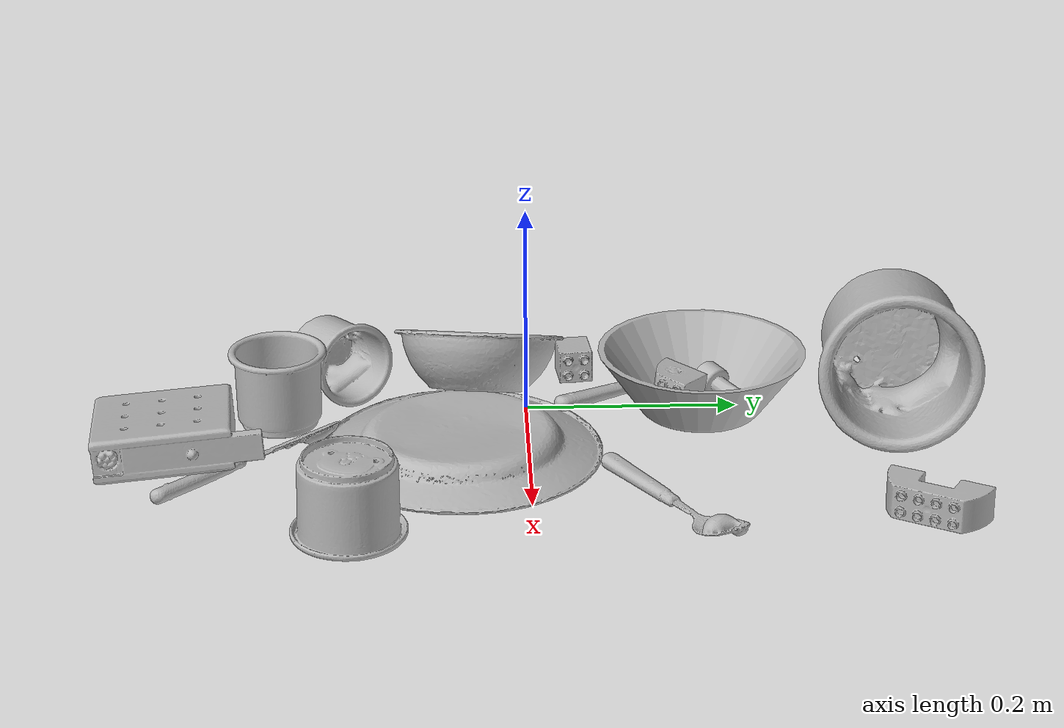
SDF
<sdf version="1.4">
  <world name="default">
    <light name="light1" type="point">
      <pose>0 0 1 0 0 0</pose>
      <diffuse>3 3 3 1</diffuse>
      <specular>3 3 3 1</specular>
    </light>
    <light name="light2" type="point">
      <pose>0 0.5 2 0 0 0</pose>
      <diffuse>1 1 1 1</diffuse>
      <specular>1 1 1 1</specular>
    </light>
    <light name="light3" type="point">
      <pose>0 0.5 2 0 0 0</pose>
      <diffuse>3 3 3 1</diffuse>
      <specular>3 3 3 1</specular>
    </light>
    <scene>
      <ambient>0.7 0.7 0.7</ambient>
    </scene>
    <model name="plate1">
      <link name="link_plate1">
        <collision name="default">
          <geometry>
            <mesh>
              <uri>model://plate/collision_meshes/collision.obj</uri>
              <scale>1.0 1.0 1.0</scale>
            </mesh>
          </geometry>
          <surface>
            <friction>
              <ode>
                <mu>0.5</mu>
                <mu2>0.5</mu2>
              </ode>
            </friction>
          <contact>
        <ode>
            <max_vel>0</max_vel>
            <min_depth>0.0001</min_depth>
            <kp>1e8</kp>
        </ode>
    </contact></surface>
        </collision>
        <visual name="default">
          <geometry>
            <mesh>
              <uri>model://plate/visual_meshes/visual.dae</uri>
              <scale>1.0 1.0 1.0</scale>
            </mesh>
          </geometry>
        </visual>
        <inertial>
          <mass>0.17760059237480164</mass>
          <pose>-0.0006044625188224018 0.0002782586379908025 -0.0010561981471255422 0.0022187804018266454 -0.0032254852757079067 0.45261158451631034</pose>
          <inertia>
            <ixx>0.0008308187</ixx>
            <iyy>0.0008228725</iyy>
            <izz>0.0016249575</izz>
            <ixy>0</ixy>
            <ixz>0</ixz>
            <iyz>0</iyz>
          </inertia>
        </inertial>
      </link>
      <pose>0.09410565346479416 -0.06196620315313339 0.013863763771951199 3.128066925542664 -0.006814763806014557 1.2859643634953353</pose>
    </model>
    <model name="cup1">
      <link name="link_cup1">
        <collision name="default">
          <geometry>
            <mesh>
              <uri>model://e_cups/collision_meshes/collision.obj</uri>
              <scale>2.0 2.0 2.0</scale>
            </mesh>
          </geometry>
          <surface>
            <friction>
              <ode>
                <mu>0.5</mu>
                <mu2>0.5</mu2>
              </ode>
            </friction>
          <contact>
        <ode>
            <max_vel>0</max_vel>
            <min_depth>0.0001</min_depth>
            <kp>1e8</kp>
        </ode>
    </contact></surface>
        </collision>
        <visual name="default">
          <geometry>
            <mesh>
              <uri>model://e_cups/visual_meshes/visual.dae</uri>
              <scale>2.0 2.0 2.0</scale>
            </mesh>
          </geometry>
        </visual>
        <inertial>
          <mass>0.744063675403595</mass>
          <pose>0.002271148143336177 0.005759569350630045 -0.007765938527882099 0.6952380949131286 0.08767384491187986 -0.5235246841726229</pose>
          <inertia>
            <ixx>0.0026243117</ixx>
            <iyy>0.0027427815</iyy>
            <izz>0.0025091455</izz>
            <ixy>0</ixy>
            <ixz>0</ixz>
            <iyz>0</iyz>
          </inertia>
        </inertial>
      </link>
      <pose>0.035534437745809555 0.3438682556152344 0.06935565918684006 -0.7841824411734971 1.4361086155654788 -0.8671366079619782</pose>
    </model>
    <model name="silverware1">
      <link name="link_silverware1">
        <collision name="default">
          <geometry>
            <mesh>
              <uri>model://knife/collision_meshes/collision.obj</uri>
              <scale>1.0 1.0 1.0</scale>
            </mesh>
          </geometry>
          <surface>
            <friction>
              <ode>
                <mu>0.5</mu>
                <mu2>0.5</mu2>
              </ode>
            </friction>
          <contact>
        <ode>
            <max_vel>0</max_vel>
            <min_depth>0.0001</min_depth>
            <kp>1e8</kp>
        </ode>
    </contact></surface>
        </collision>
        <visual name="default">
          <geometry>
            <mesh>
              <uri>model://knife/visual_meshes/visual.dae</uri>
              <scale>1.0 1.0 1.0</scale>
            </mesh>
          </geometry>
        </visual>
        <inertial>
          <mass>0.01882243901491165</mass>
          <pose>-0.02378525212407112 0.001527512213215232 5.062019408796914e-05 0.07305335090357784 0.017248422780830937 -0.007409828138098005</pose>
          <inertia>
            <ixx>5.342572e-07</ixx>
            <iyy>7.231275e-05</iyy>
            <izz>7.248483e-05</izz>
            <ixy>0</ixy>
            <ixz>0</ixz>
            <iyz>0</iyz>
          </inertia>
        </inertial>
      </link>
      <pose>0.12135054171085358 -0.253367155790329 0.010379749350249767 -0.4490532341487544 -0.025207900766433308 2.2886335687527946</pose>
    </model>
    <model name="silverware2">
      <link name="link_silverware2">
        <collision name="default">
          <geometry>
            <mesh>
              <uri>model://fork/collision_meshes/collision.obj</uri>
              <scale>1.0 1.0 1.0</scale>
            </mesh>
          </geometry>
          <surface>
            <friction>
              <ode>
                <mu>0.5</mu>
                <mu2>0.5</mu2>
              </ode>
            </friction>
          <contact>
        <ode>
            <max_vel>0</max_vel>
            <min_depth>0.0001</min_depth>
            <kp>1e8</kp>
        </ode>
    </contact></surface>
        </collision>
        <visual name="default">
          <geometry>
            <mesh>
              <uri>model://fork/visual_meshes/visual.dae</uri>
              <scale>1.0 1.0 1.0</scale>
            </mesh>
          </geometry>
        </visual>
        <inertial>
          <mass>0.02216319739818573</mass>
          <pose>-0.029570037499070168 0.0004658822435885668 0.0003218860365450382 -0.01355085274048469 -0.010977831838055618 0.014453900749429992</pose>
          <inertia>
            <ixx>7.769453e-07</ixx>
            <iyy>5.7861733e-05</iyy>
            <izz>5.8209254e-05</izz>
            <ixy>0</ixy>
            <ixz>0</ixz>
            <iyz>0</iyz>
          </inertia>
        </inertial>
      </link>
      <pose>-0.03530328720808029 0.10907353460788727 0.006555468775331974 0.028996470114359463 0.07186813787313696 2.1801122237385395</pose>
    </model>
    <model name="silverware3">
      <link name="link_silverware3">
        <collision name="default">
          <geometry>
            <mesh>
              <uri>model://spoon/collision_meshes/collision.obj</uri>
              <scale>1.0 1.0 1.0</scale>
            </mesh>
          </geometry>
          <surface>
            <friction>
              <ode>
                <mu>0.5</mu>
                <mu2>0.5</mu2>
              </ode>
            </friction>
          <contact>
        <ode>
            <max_vel>0</max_vel>
            <min_depth>0.0001</min_depth>
            <kp>1e8</kp>
        </ode>
    </contact></surface>
        </collision>
        <visual name="default">
          <geometry>
            <mesh>
              <uri>model://spoon/visual_meshes/visual.dae</uri>
              <scale>1.0 1.0 1.0</scale>
            </mesh>
          </geometry>
        </visual>
        <inertial>
          <mass>0.0369713120162487</mass>
          <pose>-0.005526314955204725 -0.001603417214937508 -0.0007271651993505657 0.03521850370393077 -0.03906584809093457 0.006150612862082015</pose>
          <inertia>
            <ixx>2.0564048e-06</ixx>
            <iyy>0.00014067463</iyy>
            <izz>0.00014168874</izz>
            <ixy>0</ixy>
            <ixz>0</ixz>
            <iyz>0</iyz>
          </inertia>
        </inertial>
      </link>
      <pose>0.2061149775981903 0.12503089010715485 0.008385260589420795 0.006731810437137665 0.026892992517310244 0.5886213264831909</pose>
    </model>
    <model name="cup3">
      <link name="link_cup3">
        <collision name="default">
          <geometry>
            <mesh>
              <uri>model://h_cups/collision_meshes/collision.obj</uri>
              <scale>1.0 1.0 1.0</scale>
            </mesh>
          </geometry>
          <surface>
            <friction>
              <ode>
                <mu>0.5</mu>
                <mu2>0.5</mu2>
              </ode>
            </friction>
          <contact>
        <ode>
            <max_vel>0</max_vel>
            <min_depth>0.0001</min_depth>
            <kp>1e8</kp>
        </ode>
    </contact></surface>
        </collision>
        <visual name="default">
          <geometry>
            <mesh>
              <uri>model://h_cups/visual_meshes/visual.dae</uri>
              <scale>1.0 1.0 1.0</scale>
            </mesh>
          </geometry>
        </visual>
        <inertial>
          <mass>0.07650958746671677</mass>
          <pose>-2.7029362172470428e-05 0.0002301867789356038 -0.0018405390437692404 -0.02436239906192228 0.06545228304852578 0.1288505673262376</pose>
          <inertia>
            <ixx>9.880857e-05</ixx>
            <iyy>9.7629454e-05</iyy>
            <izz>0.0001036231</izz>
            <ixy>0</ixy>
            <ixz>0</ixz>
            <iyz>0</iyz>
          </inertia>
        </inertial>
      </link>
      <pose>0.023814182728528976 -0.23189294338226318 0.037758003920316696 -3.556245952689518e-07 2.4910366808078988e-08 0.5169802868150288</pose>
    </model>
    <model name="cup4">
      <link name="link_cup4">
        <collision name="default">
          <geometry>
            <mesh>
              <uri>model://f_cups/collision_meshes/collision.obj</uri>
              <scale>1.0 1.0 1.0</scale>
            </mesh>
          </geometry>
          <surface>
            <friction>
              <ode>
                <mu>0.5</mu>
                <mu2>0.5</mu2>
              </ode>
            </friction>
          <contact>
        <ode>
            <max_vel>0</max_vel>
            <min_depth>0.0001</min_depth>
            <kp>1e8</kp>
        </ode>
    </contact></surface>
        </collision>
        <visual name="default">
          <geometry>
            <mesh>
              <uri>model://f_cups/visual_meshes/visual.dae</uri>
              <scale>1.0 1.0 1.0</scale>
            </mesh>
          </geometry>
        </visual>
        <inertial>
          <mass>0.06643713265657425</mass>
          <pose>-0.003171468386426568 -0.0006240070797502995 -0.003655537962913513 0.7862285241405351 -0.26079358215919657 -0.18237309734404591</pose>
          <inertia>
            <ixx>6.2452695e-05</ixx>
            <iyy>6.551358e-05</iyy>
            <izz>6.820148e-05</izz>
            <ixy>0</ixy>
            <ixz>0</ixz>
            <iyz>0</iyz>
          </inertia>
        </inertial>
      </link>
      <pose>-0.04281728342175484 -0.1790831983089447 0.037474967539310455 -1.371384362676932 -1.0650569271692993 -1.1773409871250868</pose>
    </model>
    <model name="cup5">
      <link name="link_cup5">
        <collision name="default">
          <geometry>
            <mesh>
              <uri>model://j_cups/collision_meshes/collision.obj</uri>
              <scale>1.0 1.0 1.0</scale>
            </mesh>
          </geometry>
          <surface>
            <friction>
              <ode>
                <mu>0.5</mu>
                <mu2>0.5</mu2>
              </ode>
            </friction>
          <contact>
        <ode>
            <max_vel>0</max_vel>
            <min_depth>0.0001</min_depth>
            <kp>1e8</kp>
        </ode>
    </contact></surface>
        </collision>
        <visual name="default">
          <geometry>
            <mesh>
              <uri>model://j_cups/visual_meshes/visual.dae</uri>
              <scale>1.0 1.0 1.0</scale>
            </mesh>
          </geometry>
        </visual>
        <inertial>
          <mass>0.12178023159503937</mass>
          <pose>0.0006164865335449576 0.000539897009730339 -0.001347901183180511 0.03030406613159603 0.03757978252187804 0.4386981755119238</pose>
          <inertia>
            <ixx>0.0001788119</ixx>
            <iyy>0.00018067128</iyy>
            <izz>0.00020613305</izz>
            <ixy>0</ixy>
            <ixz>0</ixz>
            <iyz>0</iyz>
          </inertia>
        </inertial>
      </link>
      <pose>0.24833640456199646 -0.15986113250255585 0.037997759878635406 -3.139845747499149 0.006369734900431056 0.9769605232478857</pose>
    </model>
    <model name="bowl1">
      <link name="link_bowl1">
        <collision name="default">
          <geometry>
            <mesh>
              <uri>model://bowl/collision_meshes/collision.obj</uri>
              <scale>1.0 1.0 1.0</scale>
            </mesh>
          </geometry>
          <surface>
            <friction>
              <ode>
                <mu>0.5</mu>
                <mu2>0.5</mu2>
              </ode>
            </friction>
          <contact>
        <ode>
            <max_vel>0</max_vel>
            <min_depth>0.0001</min_depth>
            <kp>1e8</kp>
        </ode>
    </contact></surface>
        </collision>
        <visual name="default">
          <geometry>
            <mesh>
              <uri>model://bowl/visual_meshes/visual.dae</uri>
              <scale>1.0 1.0 1.0</scale>
            </mesh>
          </geometry>
        </visual>
        <inertial>
          <mass>0.07745425403118134</mass>
          <pose>0.0002044533030129969 -0.001030205748975277 -0.0008042643312364817 -0.015764104528614948 0.014546761750555465 0.7140386532433999</pose>
          <inertia>
            <ixx>0.00017791858</ixx>
            <iyy>0.0001739432</iyy>
            <izz>0.00029932024</izz>
            <ixy>0</ixy>
            <ixz>0</ixz>
            <iyz>0</iyz>
          </inertia>
        </inertial>
      </link>
      <pose>-0.016239847987890244 -0.044893451035022736 0.04283566027879715 -0.3876663676231 0.09507051458083 1.6593382996768173</pose>
    </model>
    <model name="bowl2">
      <link name="link_bowl2">
        <collision name="default">
          <geometry>
            <mesh>
              <uri>model://bowl_a/collision_meshes/collision.obj</uri>
              <scale>1.0 1.0 1.0</scale>
            </mesh>
          </geometry>
          <surface>
            <friction>
              <ode>
                <mu>0.5</mu>
                <mu2>0.5</mu2>
              </ode>
            </friction>
          <contact>
        <ode>
            <max_vel>0</max_vel>
            <min_depth>0.0001</min_depth>
            <kp>1e8</kp>
        </ode>
    </contact></surface>
        </collision>
        <visual name="default">
          <geometry>
            <mesh>
              <uri>model://bowl_a/visual_meshes/visual.dae</uri>
              <scale>1.0 1.0 1.0</scale>
            </mesh>
          </geometry>
        </visual>
        <inertial>
          <mass>0.3088552951812744</mass>
          <pose>0.00027867488097399473 4.730938235297799e-05 -0.0013765291078016162 -0.0009805400563029818 -0.0010938222386440513 -0.19123616665791646</pose>
          <inertia>
            <ixx>0.0008793254</ixx>
            <iyy>0.00088472397</iyy>
            <izz>0.0015639137</izz>
            <ixy>0</ixy>
            <ixz>0</ixz>
            <iyz>0</iyz>
          </inertia>
        </inertial>
      </link>
      <pose>0.005264032166451216 0.16591669619083405 0.03038211725652218 1.3359014511025544e-06 -1.0575829751091015e-06 -2.6414257075283616</pose>
    </model>
    <model name="toy1">
      <link name="link_toy1">
        <collision name="default">
          <geometry>
            <mesh>
              <uri>model://nine_hole_peg_test/collision_meshes/collision.obj</uri>
              <scale>1.0 1.0 1.0</scale>
            </mesh>
          </geometry>
          <surface>
            <friction>
              <ode>
                <mu>0.5</mu>
                <mu2>0.5</mu2>
              </ode>
            </friction>
          <contact>
        <ode>
            <max_vel>0</max_vel>
            <min_depth>0.0001</min_depth>
            <kp>1e8</kp>
        </ode>
    </contact></surface>
        </collision>
        <visual name="default">
          <geometry>
            <mesh>
              <uri>model://nine_hole_peg_test/visual_meshes/visual.dae</uri>
              <scale>1.0 1.0 1.0</scale>
            </mesh>
          </geometry>
        </visual>
        <inertial>
          <mass>0.6997236609458923</mass>
          <pose>-0.004617386497557163 -0.009647613391280174 2.6460686058271676e-05 -0.0014666798725883532 0.0007194177661592421 -0.634241755630697</pose>
          <inertia>
            <ixx>0.001094133</ixx>
            <iyy>0.0010215805</iyy>
            <izz>0.0019172435</izz>
            <ixy>0</ixy>
            <ixz>0</ixz>
            <iyz>0</iyz>
          </inertia>
        </inertial>
      </link>
      <pose>0.10766153037548065 -0.3206765949726105 0.03063422255218029 0.06457860865610826 -0.0939920944269764 0.08568929788210779</pose>
    </model>
    <model name="toy2">
      <link name="link_toy2">
        <collision name="default">
          <geometry>
            <mesh>
              <uri>model://b_lego_duplo/collision_meshes/collision.obj</uri>
              <scale>1.0 1.0 1.0</scale>
            </mesh>
          </geometry>
          <surface>
            <friction>
              <ode>
                <mu>0.5</mu>
                <mu2>0.5</mu2>
              </ode>
            </friction>
          <contact>
        <ode>
            <max_vel>0</max_vel>
            <min_depth>0.0001</min_depth>
            <kp>1e8</kp>
        </ode>
    </contact></surface>
        </collision>
        <visual name="default">
          <geometry>
            <mesh>
              <uri>model://b_lego_duplo/visual_meshes/visual.dae</uri>
              <scale>1.0 1.0 1.0</scale>
            </mesh>
          </geometry>
        </visual>
        <inertial>
          <mass>0.036269694566726685</mass>
          <pose>-0.00011053054186049849 -9.152130587608553e-06 0.0019294297089800239 -0.03749458994465856 -0.026354447033388347 0.4518895757464325</pose>
          <inertia>
            <ixx>7.4228647e-06</ixx>
            <iyy>7.4727645e-06</iyy>
            <izz>6.6135317e-06</izz>
            <ixy>0</ixy>
            <ixz>0</ixz>
            <iyz>0</iyz>
          </inertia>
        </inertial>
      </link>
      <pose>-0.07343577593564987 0.049353741109371185 0.016121191903948784 1.5723708290041403 -0.012010127117635293 1.6640500095979798</pose>
    </model>
    <model name="toy3">
      <link name="link_toy3">
        <collision name="default">
          <geometry>
            <mesh>
              <uri>model://e_lego_duplo/collision_meshes/collision.obj</uri>
              <scale>1.0 1.0 1.0</scale>
            </mesh>
          </geometry>
          <surface>
            <friction>
              <ode>
                <mu>0.5</mu>
                <mu2>0.5</mu2>
              </ode>
            </friction>
          <contact>
        <ode>
            <max_vel>0</max_vel>
            <min_depth>0.0001</min_depth>
            <kp>1e8</kp>
        </ode>
    </contact></surface>
        </collision>
        <visual name="default">
          <geometry>
            <mesh>
              <uri>model://e_lego_duplo/visual_meshes/visual.dae</uri>
              <scale>1.0 1.0 1.0</scale>
            </mesh>
          </geometry>
        </visual>
        <inertial>
          <mass>0.09994293004274368</mass>
          <pose>0.0003256055060774088 0.00023485402925871313 0.0019521453650668263 -0.0225675226805428 -6.825163911406593e-05 -0.00762515763197677</pose>
          <inertia>
            <ixx>2.08414e-05</ixx>
            <iyy>8.553845e-05</iyy>
            <izz>8.329725e-05</izz>
            <ixy>0</ixy>
            <ixz>0</ixz>
            <iyz>0</iyz>
          </inertia>
        </inertial>
      </link>
      <pose>0.23690100014209747 0.3478911221027374 0.016279418021440506 1.5786388988340445 -0.004768652257272332 1.0543221810711716</pose>
    </model>
    <model name="toy4">
      <link name="link_toy4">
        <collision name="default">
          <geometry>
            <mesh>
              <uri>model://d_lego_duplo/collision_meshes/collision.obj</uri>
              <scale>1.0 1.0 1.0</scale>
            </mesh>
          </geometry>
          <surface>
            <friction>
              <ode>
                <mu>0.5</mu>
                <mu2>0.5</mu2>
              </ode>
            </friction>
          <contact>
        <ode>
            <max_vel>0</max_vel>
            <min_depth>0.0001</min_depth>
            <kp>1e8</kp>
        </ode>
    </contact></surface>
        </collision>
        <visual name="default">
          <geometry>
            <mesh>
              <uri>model://d_lego_duplo/visual_meshes/visual.dae</uri>
              <scale>1.0 1.0 1.0</scale>
            </mesh>
          </geometry>
        </visual>
        <inertial>
          <mass>0.04219998046755791</mass>
          <pose>0.0028305635787546635 0.00016366135969292372 0.0008589813369326293 0.08010947906167593 -0.38355230128712514 0.001029700717632254</pose>
          <inertia>
            <ixx>8.169298e-06</ixx>
            <iyy>1.1594444e-05</iyy>
            <izz>1.1181217e-05</izz>
            <ixy>0</ixy>
            <ixz>0</ixz>
            <iyz>0</iyz>
          </inertia>
        </inertial>
      </link>
      <pose>0.006345687434077263 0.13914436101913452 0.023093702271580696 1.5197911780633324 0.09245542104517224 0.8840044865583421</pose>
    </model>
    <model name="toy5">
      <link name="link_toy5">
        <collision name="default">
          <geometry>
            <mesh>
              <uri>model://e_toy_airplane/collision_meshes/collision.obj</uri>
              <scale>1.0 1.0 1.0</scale>
            </mesh>
          </geometry>
          <surface>
            <friction>
              <ode>
                <mu>0.5</mu>
                <mu2>0.5</mu2>
              </ode>
            </friction>
          <contact>
        <ode>
            <max_vel>0</max_vel>
            <min_depth>0.0001</min_depth>
            <kp>1e8</kp>
        </ode>
    </contact></surface>
        </collision>
        <visual name="default">
          <geometry>
            <mesh>
              <uri>model://e_toy_airplane/visual_meshes/visual.dae</uri>
              <scale>1.0 1.0 1.0</scale>
            </mesh>
          </geometry>
        </visual>
        <inertial>
          <mass>0.01083444245159626</mass>
          <pose>0.00011740464105969295 -2.2482989152194932e-05 -0.011187201365828514 0.005518500665833105 0.009228299677984822 0.1504140594290799</pose>
          <inertia>
            <ixx>3.3067965e-06</ixx>
            <iyy>3.2729695e-06</iyy>
            <izz>9.938221e-07</izz>
            <ixy>0</ixy>
            <ixz>0</ixz>
            <iyz>0</iyz>
          </inertia>
        </inertial>
      </link>
      <pose>0.004358487203717232 0.1911739557981491 0.017648300155997276 1.8945511151926082 1.1597457959937119 2.4784346171778906</pose>
    </model>
  <physics type="ode">
      <max_contacts>50</max_contacts>
      <ode>
        <solver>
          <type>quick</type>
          <iters>75</iters>
        </solver>
        <constraints>
          <contact_max_correcting_vel>0</contact_max_correcting_vel>
          <contact_surface_layer>0</contact_surface_layer>
        </constraints>
      </ode>
    </physics></world>
</sdf>
